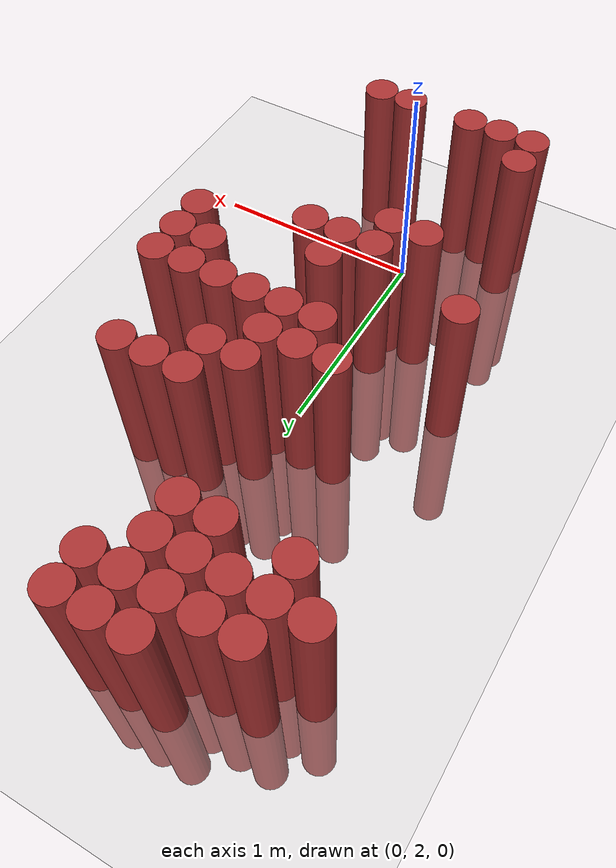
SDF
<sdf version="1.6">
 <world name="default">
  <model name="ground_plane">
   <static>1</static>
   <link name="link">
    <collision name="collision">
     <geometry><plane><normal>0 0 1</normal><size>100 100</size></plane></geometry>
     <surface><friction><ode><mu>100</mu><mu2>50</mu2></ode></friction></surface>
    </collision>
    <visual name="visual">
     <cast_shadows>0</cast_shadows>
     <geometry><plane><normal>0 0 1</normal><size>100 100</size></plane></geometry>
     <material>
      <script><uri>file://media/materials/scripts/gazebo.material</uri><name>Gazebo/Grey</name></script>
     </material>
    </visual>
   </link>
  </model>
  <model name="unit_cylinder_165">
   <static>1</static>
   <pose>-0.725000 4.075000 0.000000 0.000000 0.000000 0.000000</pose>
   <link name="link">
    <inertial>
     <mass>1</mass>
     <inertia><ixx>0.145833</ixx><ixy>0</ixy><ixz>0</ixz><iyy>0.145833</iyy><iyz>0</iyz><izz>0.125</izz></inertia>
    </inertial>
    <collision name="collision">
     <geometry><cylinder><radius>0.075000</radius><length>1.5</length></cylinder></geometry>
    </collision>
    <visual name="visual">
     <geometry><cylinder><radius>0.075000</radius><length>1.5</length></cylinder></geometry>
     <material>
      <ambient>0.648000 0.192000 0.192000 1</ambient>
      <diffuse>0.648000 0.192000 0.192000 1</diffuse>
     </material>
     <material>
      <script><name>Gazebo/Grey</name><uri>file://media/materials/scripts/gazebo.material</uri></script>
     </material>
    </visual>
   </link>
  </model>
  <model name="unit_cylinder_166">
   <static>1</static>
   <pose>-0.575000 2.725000 0.000000 0.000000 0.000000 0.000000</pose>
   <link name="link">
    <inertial>
     <mass>1</mass>
     <inertia><ixx>0.145833</ixx><ixy>0</ixy><ixz>0</ixz><iyy>0.145833</iyy><iyz>0</iyz><izz>0.125</izz></inertia>
    </inertial>
    <collision name="collision">
     <geometry><cylinder><radius>0.075000</radius><length>1.5</length></cylinder></geometry>
    </collision>
    <visual name="visual">
     <geometry><cylinder><radius>0.075000</radius><length>1.5</length></cylinder></geometry>
     <material>
      <ambient>0.648000 0.192000 0.192000 1</ambient>
      <diffuse>0.648000 0.192000 0.192000 1</diffuse>
     </material>
     <material>
      <script><name>Gazebo/Grey</name><uri>file://media/materials/scripts/gazebo.material</uri></script>
     </material>
    </visual>
   </link>
  </model>
  <model name="unit_cylinder_167">
   <static>1</static>
   <pose>-0.575000 3.925000 0.000000 0.000000 0.000000 0.000000</pose>
   <link name="link">
    <inertial>
     <mass>1</mass>
     <inertia><ixx>0.145833</ixx><ixy>0</ixy><ixz>0</ixz><iyy>0.145833</iyy><iyz>0</iyz><izz>0.125</izz></inertia>
    </inertial>
    <collision name="collision">
     <geometry><cylinder><radius>0.075000</radius><length>1.5</length></cylinder></geometry>
    </collision>
    <visual name="visual">
     <geometry><cylinder><radius>0.075000</radius><length>1.5</length></cylinder></geometry>
     <material>
      <ambient>0.648000 0.192000 0.192000 1</ambient>
      <diffuse>0.648000 0.192000 0.192000 1</diffuse>
     </material>
     <material>
      <script><name>Gazebo/Grey</name><uri>file://media/materials/scripts/gazebo.material</uri></script>
     </material>
    </visual>
   </link>
  </model>
  <model name="unit_cylinder_168">
   <static>1</static>
   <pose>-0.575000 4.075000 0.000000 0.000000 0.000000 0.000000</pose>
   <link name="link">
    <inertial>
     <mass>1</mass>
     <inertia><ixx>0.145833</ixx><ixy>0</ixy><ixz>0</ixz><iyy>0.145833</iyy><iyz>0</iyz><izz>0.125</izz></inertia>
    </inertial>
    <collision name="collision">
     <geometry><cylinder><radius>0.075000</radius><length>1.5</length></cylinder></geometry>
    </collision>
    <visual name="visual">
     <geometry><cylinder><radius>0.075000</radius><length>1.5</length></cylinder></geometry>
     <material>
      <ambient>0.648000 0.192000 0.192000 1</ambient>
      <diffuse>0.648000 0.192000 0.192000 1</diffuse>
     </material>
     <material>
      <script><name>Gazebo/Grey</name><uri>file://media/materials/scripts/gazebo.material</uri></script>
     </material>
    </visual>
   </link>
  </model>
  <model name="unit_cylinder_169">
   <static>1</static>
   <pose>-0.575000 4.225000 0.000000 0.000000 0.000000 0.000000</pose>
   <link name="link">
    <inertial>
     <mass>1</mass>
     <inertia><ixx>0.145833</ixx><ixy>0</ixy><ixz>0</ixz><iyy>0.145833</iyy><iyz>0</iyz><izz>0.125</izz></inertia>
    </inertial>
    <collision name="collision">
     <geometry><cylinder><radius>0.075000</radius><length>1.5</length></cylinder></geometry>
    </collision>
    <visual name="visual">
     <geometry><cylinder><radius>0.075000</radius><length>1.5</length></cylinder></geometry>
     <material>
      <ambient>0.648000 0.192000 0.192000 1</ambient>
      <diffuse>0.648000 0.192000 0.192000 1</diffuse>
     </material>
     <material>
      <script><name>Gazebo/Grey</name><uri>file://media/materials/scripts/gazebo.material</uri></script>
     </material>
    </visual>
   </link>
  </model>
  <model name="unit_cylinder_170">
   <static>1</static>
   <pose>-0.425000 1.675000 0.000000 0.000000 0.000000 0.000000</pose>
   <link name="link">
    <inertial>
     <mass>1</mass>
     <inertia><ixx>0.145833</ixx><ixy>0</ixy><ixz>0</ixz><iyy>0.145833</iyy><iyz>0</iyz><izz>0.125</izz></inertia>
    </inertial>
    <collision name="collision">
     <geometry><cylinder><radius>0.075000</radius><length>1.5</length></cylinder></geometry>
    </collision>
    <visual name="visual">
     <geometry><cylinder><radius>0.075000</radius><length>1.5</length></cylinder></geometry>
     <material>
      <ambient>0.648000 0.192000 0.192000 1</ambient>
      <diffuse>0.648000 0.192000 0.192000 1</diffuse>
     </material>
     <material>
      <script><name>Gazebo/Grey</name><uri>file://media/materials/scripts/gazebo.material</uri></script>
     </material>
    </visual>
   </link>
  </model>
  <model name="unit_cylinder_171">
   <static>1</static>
   <pose>-0.425000 1.825000 0.000000 0.000000 0.000000 0.000000</pose>
   <link name="link">
    <inertial>
     <mass>1</mass>
     <inertia><ixx>0.145833</ixx><ixy>0</ixy><ixz>0</ixz><iyy>0.145833</iyy><iyz>0</iyz><izz>0.125</izz></inertia>
    </inertial>
    <collision name="collision">
     <geometry><cylinder><radius>0.075000</radius><length>1.5</length></cylinder></geometry>
    </collision>
    <visual name="visual">
     <geometry><cylinder><radius>0.075000</radius><length>1.5</length></cylinder></geometry>
     <material>
      <ambient>0.648000 0.192000 0.192000 1</ambient>
      <diffuse>0.648000 0.192000 0.192000 1</diffuse>
     </material>
     <material>
      <script><name>Gazebo/Grey</name><uri>file://media/materials/scripts/gazebo.material</uri></script>
     </material>
    </visual>
   </link>
  </model>
  <model name="unit_cylinder_172">
   <static>1</static>
   <pose>-0.425000 4.075000 0.000000 0.000000 0.000000 0.000000</pose>
   <link name="link">
    <inertial>
     <mass>1</mass>
     <inertia><ixx>0.145833</ixx><ixy>0</ixy><ixz>0</ixz><iyy>0.145833</iyy><iyz>0</iyz><izz>0.125</izz></inertia>
    </inertial>
    <collision name="collision">
     <geometry><cylinder><radius>0.075000</radius><length>1.5</length></cylinder></geometry>
    </collision>
    <visual name="visual">
     <geometry><cylinder><radius>0.075000</radius><length>1.5</length></cylinder></geometry>
     <material>
      <ambient>0.648000 0.192000 0.192000 1</ambient>
      <diffuse>0.648000 0.192000 0.192000 1</diffuse>
     </material>
     <material>
      <script><name>Gazebo/Grey</name><uri>file://media/materials/scripts/gazebo.material</uri></script>
     </material>
    </visual>
   </link>
  </model>
  <model name="unit_cylinder_173">
   <static>1</static>
   <pose>-0.425000 4.225000 0.000000 0.000000 0.000000 0.000000</pose>
   <link name="link">
    <inertial>
     <mass>1</mass>
     <inertia><ixx>0.145833</ixx><ixy>0</ixy><ixz>0</ixz><iyy>0.145833</iyy><iyz>0</iyz><izz>0.125</izz></inertia>
    </inertial>
    <collision name="collision">
     <geometry><cylinder><radius>0.075000</radius><length>1.5</length></cylinder></geometry>
    </collision>
    <visual name="visual">
     <geometry><cylinder><radius>0.075000</radius><length>1.5</length></cylinder></geometry>
     <material>
      <ambient>0.648000 0.192000 0.192000 1</ambient>
      <diffuse>0.648000 0.192000 0.192000 1</diffuse>
     </material>
     <material>
      <script><name>Gazebo/Grey</name><uri>file://media/materials/scripts/gazebo.material</uri></script>
     </material>
    </visual>
   </link>
  </model>
  <model name="unit_cylinder_174">
   <static>1</static>
   <pose>-0.275000 1.675000 0.000000 0.000000 0.000000 0.000000</pose>
   <link name="link">
    <inertial>
     <mass>1</mass>
     <inertia><ixx>0.145833</ixx><ixy>0</ixy><ixz>0</ixz><iyy>0.145833</iyy><iyz>0</iyz><izz>0.125</izz></inertia>
    </inertial>
    <collision name="collision">
     <geometry><cylinder><radius>0.075000</radius><length>1.5</length></cylinder></geometry>
    </collision>
    <visual name="visual">
     <geometry><cylinder><radius>0.075000</radius><length>1.5</length></cylinder></geometry>
     <material>
      <ambient>0.648000 0.192000 0.192000 1</ambient>
      <diffuse>0.648000 0.192000 0.192000 1</diffuse>
     </material>
     <material>
      <script><name>Gazebo/Grey</name><uri>file://media/materials/scripts/gazebo.material</uri></script>
     </material>
    </visual>
   </link>
  </model>
  <model name="unit_cylinder_175">
   <static>1</static>
   <pose>-0.275000 2.425000 0.000000 0.000000 0.000000 0.000000</pose>
   <link name="link">
    <inertial>
     <mass>1</mass>
     <inertia><ixx>0.145833</ixx><ixy>0</ixy><ixz>0</ixz><iyy>0.145833</iyy><iyz>0</iyz><izz>0.125</izz></inertia>
    </inertial>
    <collision name="collision">
     <geometry><cylinder><radius>0.075000</radius><length>1.5</length></cylinder></geometry>
    </collision>
    <visual name="visual">
     <geometry><cylinder><radius>0.075000</radius><length>1.5</length></cylinder></geometry>
     <material>
      <ambient>0.648000 0.192000 0.192000 1</ambient>
      <diffuse>0.648000 0.192000 0.192000 1</diffuse>
     </material>
     <material>
      <script><name>Gazebo/Grey</name><uri>file://media/materials/scripts/gazebo.material</uri></script>
     </material>
    </visual>
   </link>
  </model>
  <model name="unit_cylinder_176">
   <static>1</static>
   <pose>-0.275000 3.175000 0.000000 0.000000 0.000000 0.000000</pose>
   <link name="link">
    <inertial>
     <mass>1</mass>
     <inertia><ixx>0.145833</ixx><ixy>0</ixy><ixz>0</ixz><iyy>0.145833</iyy><iyz>0</iyz><izz>0.125</izz></inertia>
    </inertial>
    <collision name="collision">
     <geometry><cylinder><radius>0.075000</radius><length>1.5</length></cylinder></geometry>
    </collision>
    <visual name="visual">
     <geometry><cylinder><radius>0.075000</radius><length>1.5</length></cylinder></geometry>
     <material>
      <ambient>0.648000 0.192000 0.192000 1</ambient>
      <diffuse>0.648000 0.192000 0.192000 1</diffuse>
     </material>
     <material>
      <script><name>Gazebo/Grey</name><uri>file://media/materials/scripts/gazebo.material</uri></script>
     </material>
    </visual>
   </link>
  </model>
  <model name="unit_cylinder_177">
   <static>1</static>
   <pose>-0.275000 3.925000 0.000000 0.000000 0.000000 0.000000</pose>
   <link name="link">
    <inertial>
     <mass>1</mass>
     <inertia><ixx>0.145833</ixx><ixy>0</ixy><ixz>0</ixz><iyy>0.145833</iyy><iyz>0</iyz><izz>0.125</izz></inertia>
    </inertial>
    <collision name="collision">
     <geometry><cylinder><radius>0.075000</radius><length>1.5</length></cylinder></geometry>
    </collision>
    <visual name="visual">
     <geometry><cylinder><radius>0.075000</radius><length>1.5</length></cylinder></geometry>
     <material>
      <ambient>0.648000 0.192000 0.192000 1</ambient>
      <diffuse>0.648000 0.192000 0.192000 1</diffuse>
     </material>
     <material>
      <script><name>Gazebo/Grey</name><uri>file://media/materials/scripts/gazebo.material</uri></script>
     </material>
    </visual>
   </link>
  </model>
  <model name="unit_cylinder_178">
   <static>1</static>
   <pose>-0.275000 4.075000 0.000000 0.000000 0.000000 0.000000</pose>
   <link name="link">
    <inertial>
     <mass>1</mass>
     <inertia><ixx>0.145833</ixx><ixy>0</ixy><ixz>0</ixz><iyy>0.145833</iyy><iyz>0</iyz><izz>0.125</izz></inertia>
    </inertial>
    <collision name="collision">
     <geometry><cylinder><radius>0.075000</radius><length>1.5</length></cylinder></geometry>
    </collision>
    <visual name="visual">
     <geometry><cylinder><radius>0.075000</radius><length>1.5</length></cylinder></geometry>
     <material>
      <ambient>0.648000 0.192000 0.192000 1</ambient>
      <diffuse>0.648000 0.192000 0.192000 1</diffuse>
     </material>
     <material>
      <script><name>Gazebo/Grey</name><uri>file://media/materials/scripts/gazebo.material</uri></script>
     </material>
    </visual>
   </link>
  </model>
  <model name="unit_cylinder_179">
   <static>1</static>
   <pose>-0.275000 4.225000 0.000000 0.000000 0.000000 0.000000</pose>
   <link name="link">
    <inertial>
     <mass>1</mass>
     <inertia><ixx>0.145833</ixx><ixy>0</ixy><ixz>0</ixz><iyy>0.145833</iyy><iyz>0</iyz><izz>0.125</izz></inertia>
    </inertial>
    <collision name="collision">
     <geometry><cylinder><radius>0.075000</radius><length>1.5</length></cylinder></geometry>
    </collision>
    <visual name="visual">
     <geometry><cylinder><radius>0.075000</radius><length>1.5</length></cylinder></geometry>
     <material>
      <ambient>0.648000 0.192000 0.192000 1</ambient>
      <diffuse>0.648000 0.192000 0.192000 1</diffuse>
     </material>
     <material>
      <script><name>Gazebo/Grey</name><uri>file://media/materials/scripts/gazebo.material</uri></script>
     </material>
    </visual>
   </link>
  </model>
  <model name="unit_cylinder_180">
   <static>1</static>
   <pose>-0.275000 4.375000 0.000000 0.000000 0.000000 0.000000</pose>
   <link name="link">
    <inertial>
     <mass>1</mass>
     <inertia><ixx>0.145833</ixx><ixy>0</ixy><ixz>0</ixz><iyy>0.145833</iyy><iyz>0</iyz><izz>0.125</izz></inertia>
    </inertial>
    <collision name="collision">
     <geometry><cylinder><radius>0.075000</radius><length>1.5</length></cylinder></geometry>
    </collision>
    <visual name="visual">
     <geometry><cylinder><radius>0.075000</radius><length>1.5</length></cylinder></geometry>
     <material>
      <ambient>0.648000 0.192000 0.192000 1</ambient>
      <diffuse>0.648000 0.192000 0.192000 1</diffuse>
     </material>
     <material>
      <script><name>Gazebo/Grey</name><uri>file://media/materials/scripts/gazebo.material</uri></script>
     </material>
    </visual>
   </link>
  </model>
  <model name="unit_cylinder_182">
   <static>1</static>
   <pose>-0.125000 1.675000 0.000000 0.000000 0.000000 0.000000</pose>
   <link name="link">
    <inertial>
     <mass>1</mass>
     <inertia><ixx>0.145833</ixx><ixy>0</ixy><ixz>0</ixz><iyy>0.145833</iyy><iyz>0</iyz><izz>0.125</izz></inertia>
    </inertial>
    <collision name="collision">
     <geometry><cylinder><radius>0.075000</radius><length>1.5</length></cylinder></geometry>
    </collision>
    <visual name="visual">
     <geometry><cylinder><radius>0.075000</radius><length>1.5</length></cylinder></geometry>
     <material>
      <ambient>0.648000 0.192000 0.192000 1</ambient>
      <diffuse>0.648000 0.192000 0.192000 1</diffuse>
     </material>
     <material>
      <script><name>Gazebo/Grey</name><uri>file://media/materials/scripts/gazebo.material</uri></script>
     </material>
    </visual>
   </link>
  </model>
  <model name="unit_cylinder_183">
   <static>1</static>
   <pose>-0.125000 2.425000 0.000000 0.000000 0.000000 0.000000</pose>
   <link name="link">
    <inertial>
     <mass>1</mass>
     <inertia><ixx>0.145833</ixx><ixy>0</ixy><ixz>0</ixz><iyy>0.145833</iyy><iyz>0</iyz><izz>0.125</izz></inertia>
    </inertial>
    <collision name="collision">
     <geometry><cylinder><radius>0.075000</radius><length>1.5</length></cylinder></geometry>
    </collision>
    <visual name="visual">
     <geometry><cylinder><radius>0.075000</radius><length>1.5</length></cylinder></geometry>
     <material>
      <ambient>0.648000 0.192000 0.192000 1</ambient>
      <diffuse>0.648000 0.192000 0.192000 1</diffuse>
     </material>
     <material>
      <script><name>Gazebo/Grey</name><uri>file://media/materials/scripts/gazebo.material</uri></script>
     </material>
    </visual>
   </link>
  </model>
  <model name="unit_cylinder_184">
   <static>1</static>
   <pose>-0.125000 2.575000 0.000000 0.000000 0.000000 0.000000</pose>
   <link name="link">
    <inertial>
     <mass>1</mass>
     <inertia><ixx>0.145833</ixx><ixy>0</ixy><ixz>0</ixz><iyy>0.145833</iyy><iyz>0</iyz><izz>0.125</izz></inertia>
    </inertial>
    <collision name="collision">
     <geometry><cylinder><radius>0.075000</radius><length>1.5</length></cylinder></geometry>
    </collision>
    <visual name="visual">
     <geometry><cylinder><radius>0.075000</radius><length>1.5</length></cylinder></geometry>
     <material>
      <ambient>0.648000 0.192000 0.192000 1</ambient>
      <diffuse>0.648000 0.192000 0.192000 1</diffuse>
     </material>
     <material>
      <script><name>Gazebo/Grey</name><uri>file://media/materials/scripts/gazebo.material</uri></script>
     </material>
    </visual>
   </link>
  </model>
  <model name="unit_cylinder_185">
   <static>1</static>
   <pose>-0.125000 3.025000 0.000000 0.000000 0.000000 0.000000</pose>
   <link name="link">
    <inertial>
     <mass>1</mass>
     <inertia><ixx>0.145833</ixx><ixy>0</ixy><ixz>0</ixz><iyy>0.145833</iyy><iyz>0</iyz><izz>0.125</izz></inertia>
    </inertial>
    <collision name="collision">
     <geometry><cylinder><radius>0.075000</radius><length>1.5</length></cylinder></geometry>
    </collision>
    <visual name="visual">
     <geometry><cylinder><radius>0.075000</radius><length>1.5</length></cylinder></geometry>
     <material>
      <ambient>0.648000 0.192000 0.192000 1</ambient>
      <diffuse>0.648000 0.192000 0.192000 1</diffuse>
     </material>
     <material>
      <script><name>Gazebo/Grey</name><uri>file://media/materials/scripts/gazebo.material</uri></script>
     </material>
    </visual>
   </link>
  </model>
  <model name="unit_cylinder_186">
   <static>1</static>
   <pose>-0.125000 3.175000 0.000000 0.000000 0.000000 0.000000</pose>
   <link name="link">
    <inertial>
     <mass>1</mass>
     <inertia><ixx>0.145833</ixx><ixy>0</ixy><ixz>0</ixz><iyy>0.145833</iyy><iyz>0</iyz><izz>0.125</izz></inertia>
    </inertial>
    <collision name="collision">
     <geometry><cylinder><radius>0.075000</radius><length>1.5</length></cylinder></geometry>
    </collision>
    <visual name="visual">
     <geometry><cylinder><radius>0.075000</radius><length>1.5</length></cylinder></geometry>
     <material>
      <ambient>0.648000 0.192000 0.192000 1</ambient>
      <diffuse>0.648000 0.192000 0.192000 1</diffuse>
     </material>
     <material>
      <script><name>Gazebo/Grey</name><uri>file://media/materials/scripts/gazebo.material</uri></script>
     </material>
    </visual>
   </link>
  </model>
  <model name="unit_cylinder_187">
   <static>1</static>
   <pose>-0.125000 3.925000 0.000000 0.000000 0.000000 0.000000</pose>
   <link name="link">
    <inertial>
     <mass>1</mass>
     <inertia><ixx>0.145833</ixx><ixy>0</ixy><ixz>0</ixz><iyy>0.145833</iyy><iyz>0</iyz><izz>0.125</izz></inertia>
    </inertial>
    <collision name="collision">
     <geometry><cylinder><radius>0.075000</radius><length>1.5</length></cylinder></geometry>
    </collision>
    <visual name="visual">
     <geometry><cylinder><radius>0.075000</radius><length>1.5</length></cylinder></geometry>
     <material>
      <ambient>0.648000 0.192000 0.192000 1</ambient>
      <diffuse>0.648000 0.192000 0.192000 1</diffuse>
     </material>
     <material>
      <script><name>Gazebo/Grey</name><uri>file://media/materials/scripts/gazebo.material</uri></script>
     </material>
    </visual>
   </link>
  </model>
  <model name="unit_cylinder_188">
   <static>1</static>
   <pose>-0.125000 4.075000 0.000000 0.000000 0.000000 0.000000</pose>
   <link name="link">
    <inertial>
     <mass>1</mass>
     <inertia><ixx>0.145833</ixx><ixy>0</ixy><ixz>0</ixz><iyy>0.145833</iyy><iyz>0</iyz><izz>0.125</izz></inertia>
    </inertial>
    <collision name="collision">
     <geometry><cylinder><radius>0.075000</radius><length>1.5</length></cylinder></geometry>
    </collision>
    <visual name="visual">
     <geometry><cylinder><radius>0.075000</radius><length>1.5</length></cylinder></geometry>
     <material>
      <ambient>0.648000 0.192000 0.192000 1</ambient>
      <diffuse>0.648000 0.192000 0.192000 1</diffuse>
     </material>
     <material>
      <script><name>Gazebo/Grey</name><uri>file://media/materials/scripts/gazebo.material</uri></script>
     </material>
    </visual>
   </link>
  </model>
  <model name="unit_cylinder_189">
   <static>1</static>
   <pose>-0.125000 4.225000 0.000000 0.000000 0.000000 0.000000</pose>
   <link name="link">
    <inertial>
     <mass>1</mass>
     <inertia><ixx>0.145833</ixx><ixy>0</ixy><ixz>0</ixz><iyy>0.145833</iyy><iyz>0</iyz><izz>0.125</izz></inertia>
    </inertial>
    <collision name="collision">
     <geometry><cylinder><radius>0.075000</radius><length>1.5</length></cylinder></geometry>
    </collision>
    <visual name="visual">
     <geometry><cylinder><radius>0.075000</radius><length>1.5</length></cylinder></geometry>
     <material>
      <ambient>0.648000 0.192000 0.192000 1</ambient>
      <diffuse>0.648000 0.192000 0.192000 1</diffuse>
     </material>
     <material>
      <script><name>Gazebo/Grey</name><uri>file://media/materials/scripts/gazebo.material</uri></script>
     </material>
    </visual>
   </link>
  </model>
  <model name="unit_cylinder_190">
   <static>1</static>
   <pose>-0.125000 4.375000 0.000000 0.000000 0.000000 0.000000</pose>
   <link name="link">
    <inertial>
     <mass>1</mass>
     <inertia><ixx>0.145833</ixx><ixy>0</ixy><ixz>0</ixz><iyy>0.145833</iyy><iyz>0</iyz><izz>0.125</izz></inertia>
    </inertial>
    <collision name="collision">
     <geometry><cylinder><radius>0.075000</radius><length>1.5</length></cylinder></geometry>
    </collision>
    <visual name="visual">
     <geometry><cylinder><radius>0.075000</radius><length>1.5</length></cylinder></geometry>
     <material>
      <ambient>0.648000 0.192000 0.192000 1</ambient>
      <diffuse>0.648000 0.192000 0.192000 1</diffuse>
     </material>
     <material>
      <script><name>Gazebo/Grey</name><uri>file://media/materials/scripts/gazebo.material</uri></script>
     </material>
    </visual>
   </link>
  </model>
  <model name="unit_cylinder_191">
   <static>1</static>
   <pose>0.025000 2.575000 0.000000 0.000000 0.000000 0.000000</pose>
   <link name="link">
    <inertial>
     <mass>1</mass>
     <inertia><ixx>0.145833</ixx><ixy>0</ixy><ixz>0</ixz><iyy>0.145833</iyy><iyz>0</iyz><izz>0.125</izz></inertia>
    </inertial>
    <collision name="collision">
     <geometry><cylinder><radius>0.075000</radius><length>1.5</length></cylinder></geometry>
    </collision>
    <visual name="visual">
     <geometry><cylinder><radius>0.075000</radius><length>1.5</length></cylinder></geometry>
     <material>
      <ambient>0.648000 0.192000 0.192000 1</ambient>
      <diffuse>0.648000 0.192000 0.192000 1</diffuse>
     </material>
     <material>
      <script><name>Gazebo/Grey</name><uri>file://media/materials/scripts/gazebo.material</uri></script>
     </material>
    </visual>
   </link>
  </model>
  <model name="unit_cylinder_192">
   <static>1</static>
   <pose>0.025000 2.725000 0.000000 0.000000 0.000000 0.000000</pose>
   <link name="link">
    <inertial>
     <mass>1</mass>
     <inertia><ixx>0.145833</ixx><ixy>0</ixy><ixz>0</ixz><iyy>0.145833</iyy><iyz>0</iyz><izz>0.125</izz></inertia>
    </inertial>
    <collision name="collision">
     <geometry><cylinder><radius>0.075000</radius><length>1.5</length></cylinder></geometry>
    </collision>
    <visual name="visual">
     <geometry><cylinder><radius>0.075000</radius><length>1.5</length></cylinder></geometry>
     <material>
      <ambient>0.648000 0.192000 0.192000 1</ambient>
      <diffuse>0.648000 0.192000 0.192000 1</diffuse>
     </material>
     <material>
      <script><name>Gazebo/Grey</name><uri>file://media/materials/scripts/gazebo.material</uri></script>
     </material>
    </visual>
   </link>
  </model>
  <model name="unit_cylinder_193">
   <static>1</static>
   <pose>0.025000 3.025000 0.000000 0.000000 0.000000 0.000000</pose>
   <link name="link">
    <inertial>
     <mass>1</mass>
     <inertia><ixx>0.145833</ixx><ixy>0</ixy><ixz>0</ixz><iyy>0.145833</iyy><iyz>0</iyz><izz>0.125</izz></inertia>
    </inertial>
    <collision name="collision">
     <geometry><cylinder><radius>0.075000</radius><length>1.5</length></cylinder></geometry>
    </collision>
    <visual name="visual">
     <geometry><cylinder><radius>0.075000</radius><length>1.5</length></cylinder></geometry>
     <material>
      <ambient>0.648000 0.192000 0.192000 1</ambient>
      <diffuse>0.648000 0.192000 0.192000 1</diffuse>
     </material>
     <material>
      <script><name>Gazebo/Grey</name><uri>file://media/materials/scripts/gazebo.material</uri></script>
     </material>
    </visual>
   </link>
  </model>
  <model name="unit_cylinder_194">
   <static>1</static>
   <pose>0.025000 3.175000 0.000000 0.000000 0.000000 0.000000</pose>
   <link name="link">
    <inertial>
     <mass>1</mass>
     <inertia><ixx>0.145833</ixx><ixy>0</ixy><ixz>0</ixz><iyy>0.145833</iyy><iyz>0</iyz><izz>0.125</izz></inertia>
    </inertial>
    <collision name="collision">
     <geometry><cylinder><radius>0.075000</radius><length>1.5</length></cylinder></geometry>
    </collision>
    <visual name="visual">
     <geometry><cylinder><radius>0.075000</radius><length>1.5</length></cylinder></geometry>
     <material>
      <ambient>0.648000 0.192000 0.192000 1</ambient>
      <diffuse>0.648000 0.192000 0.192000 1</diffuse>
     </material>
     <material>
      <script><name>Gazebo/Grey</name><uri>file://media/materials/scripts/gazebo.material</uri></script>
     </material>
    </visual>
   </link>
  </model>
  <model name="unit_cylinder_195">
   <static>1</static>
   <pose>0.025000 3.325000 0.000000 0.000000 0.000000 0.000000</pose>
   <link name="link">
    <inertial>
     <mass>1</mass>
     <inertia><ixx>0.145833</ixx><ixy>0</ixy><ixz>0</ixz><iyy>0.145833</iyy><iyz>0</iyz><izz>0.125</izz></inertia>
    </inertial>
    <collision name="collision">
     <geometry><cylinder><radius>0.075000</radius><length>1.5</length></cylinder></geometry>
    </collision>
    <visual name="visual">
     <geometry><cylinder><radius>0.075000</radius><length>1.5</length></cylinder></geometry>
     <material>
      <ambient>0.648000 0.192000 0.192000 1</ambient>
      <diffuse>0.648000 0.192000 0.192000 1</diffuse>
     </material>
     <material>
      <script><name>Gazebo/Grey</name><uri>file://media/materials/scripts/gazebo.material</uri></script>
     </material>
    </visual>
   </link>
  </model>
  <model name="unit_cylinder_196">
   <static>1</static>
   <pose>0.025000 4.225000 0.000000 0.000000 0.000000 0.000000</pose>
   <link name="link">
    <inertial>
     <mass>1</mass>
     <inertia><ixx>0.145833</ixx><ixy>0</ixy><ixz>0</ixz><iyy>0.145833</iyy><iyz>0</iyz><izz>0.125</izz></inertia>
    </inertial>
    <collision name="collision">
     <geometry><cylinder><radius>0.075000</radius><length>1.5</length></cylinder></geometry>
    </collision>
    <visual name="visual">
     <geometry><cylinder><radius>0.075000</radius><length>1.5</length></cylinder></geometry>
     <material>
      <ambient>0.648000 0.192000 0.192000 1</ambient>
      <diffuse>0.648000 0.192000 0.192000 1</diffuse>
     </material>
     <material>
      <script><name>Gazebo/Grey</name><uri>file://media/materials/scripts/gazebo.material</uri></script>
     </material>
    </visual>
   </link>
  </model>
  <model name="unit_cylinder_197">
   <static>1</static>
   <pose>0.025000 4.375000 0.000000 0.000000 0.000000 0.000000</pose>
   <link name="link">
    <inertial>
     <mass>1</mass>
     <inertia><ixx>0.145833</ixx><ixy>0</ixy><ixz>0</ixz><iyy>0.145833</iyy><iyz>0</iyz><izz>0.125</izz></inertia>
    </inertial>
    <collision name="collision">
     <geometry><cylinder><radius>0.075000</radius><length>1.5</length></cylinder></geometry>
    </collision>
    <visual name="visual">
     <geometry><cylinder><radius>0.075000</radius><length>1.5</length></cylinder></geometry>
     <material>
      <ambient>0.648000 0.192000 0.192000 1</ambient>
      <diffuse>0.648000 0.192000 0.192000 1</diffuse>
     </material>
     <material>
      <script><name>Gazebo/Grey</name><uri>file://media/materials/scripts/gazebo.material</uri></script>
     </material>
    </visual>
   </link>
  </model>
  <model name="unit_cylinder_199">
   <static>1</static>
   <pose>0.175000 1.675000 0.000000 0.000000 0.000000 0.000000</pose>
   <link name="link">
    <inertial>
     <mass>1</mass>
     <inertia><ixx>0.145833</ixx><ixy>0</ixy><ixz>0</ixz><iyy>0.145833</iyy><iyz>0</iyz><izz>0.125</izz></inertia>
    </inertial>
    <collision name="collision">
     <geometry><cylinder><radius>0.075000</radius><length>1.5</length></cylinder></geometry>
    </collision>
    <visual name="visual">
     <geometry><cylinder><radius>0.075000</radius><length>1.5</length></cylinder></geometry>
     <material>
      <ambient>0.648000 0.192000 0.192000 1</ambient>
      <diffuse>0.648000 0.192000 0.192000 1</diffuse>
     </material>
     <material>
      <script><name>Gazebo/Grey</name><uri>file://media/materials/scripts/gazebo.material</uri></script>
     </material>
    </visual>
   </link>
  </model>
  <model name="unit_cylinder_200">
   <static>1</static>
   <pose>0.175000 2.575000 0.000000 0.000000 0.000000 0.000000</pose>
   <link name="link">
    <inertial>
     <mass>1</mass>
     <inertia><ixx>0.145833</ixx><ixy>0</ixy><ixz>0</ixz><iyy>0.145833</iyy><iyz>0</iyz><izz>0.125</izz></inertia>
    </inertial>
    <collision name="collision">
     <geometry><cylinder><radius>0.075000</radius><length>1.5</length></cylinder></geometry>
    </collision>
    <visual name="visual">
     <geometry><cylinder><radius>0.075000</radius><length>1.5</length></cylinder></geometry>
     <material>
      <ambient>0.648000 0.192000 0.192000 1</ambient>
      <diffuse>0.648000 0.192000 0.192000 1</diffuse>
     </material>
     <material>
      <script><name>Gazebo/Grey</name><uri>file://media/materials/scripts/gazebo.material</uri></script>
     </material>
    </visual>
   </link>
  </model>
  <model name="unit_cylinder_201">
   <static>1</static>
   <pose>0.175000 3.025000 0.000000 0.000000 0.000000 0.000000</pose>
   <link name="link">
    <inertial>
     <mass>1</mass>
     <inertia><ixx>0.145833</ixx><ixy>0</ixy><ixz>0</ixz><iyy>0.145833</iyy><iyz>0</iyz><izz>0.125</izz></inertia>
    </inertial>
    <collision name="collision">
     <geometry><cylinder><radius>0.075000</radius><length>1.5</length></cylinder></geometry>
    </collision>
    <visual name="visual">
     <geometry><cylinder><radius>0.075000</radius><length>1.5</length></cylinder></geometry>
     <material>
      <ambient>0.648000 0.192000 0.192000 1</ambient>
      <diffuse>0.648000 0.192000 0.192000 1</diffuse>
     </material>
     <material>
      <script><name>Gazebo/Grey</name><uri>file://media/materials/scripts/gazebo.material</uri></script>
     </material>
    </visual>
   </link>
  </model>
  <model name="unit_cylinder_202">
   <static>1</static>
   <pose>0.175000 3.325000 0.000000 0.000000 0.000000 0.000000</pose>
   <link name="link">
    <inertial>
     <mass>1</mass>
     <inertia><ixx>0.145833</ixx><ixy>0</ixy><ixz>0</ixz><iyy>0.145833</iyy><iyz>0</iyz><izz>0.125</izz></inertia>
    </inertial>
    <collision name="collision">
     <geometry><cylinder><radius>0.075000</radius><length>1.5</length></cylinder></geometry>
    </collision>
    <visual name="visual">
     <geometry><cylinder><radius>0.075000</radius><length>1.5</length></cylinder></geometry>
     <material>
      <ambient>0.648000 0.192000 0.192000 1</ambient>
      <diffuse>0.648000 0.192000 0.192000 1</diffuse>
     </material>
     <material>
      <script><name>Gazebo/Grey</name><uri>file://media/materials/scripts/gazebo.material</uri></script>
     </material>
    </visual>
   </link>
  </model>
  <model name="unit_cylinder_203">
   <static>1</static>
   <pose>0.175000 3.475000 0.000000 0.000000 0.000000 0.000000</pose>
   <link name="link">
    <inertial>
     <mass>1</mass>
     <inertia><ixx>0.145833</ixx><ixy>0</ixy><ixz>0</ixz><iyy>0.145833</iyy><iyz>0</iyz><izz>0.125</izz></inertia>
    </inertial>
    <collision name="collision">
     <geometry><cylinder><radius>0.075000</radius><length>1.5</length></cylinder></geometry>
    </collision>
    <visual name="visual">
     <geometry><cylinder><radius>0.075000</radius><length>1.5</length></cylinder></geometry>
     <material>
      <ambient>0.648000 0.192000 0.192000 1</ambient>
      <diffuse>0.648000 0.192000 0.192000 1</diffuse>
     </material>
     <material>
      <script><name>Gazebo/Grey</name><uri>file://media/materials/scripts/gazebo.material</uri></script>
     </material>
    </visual>
   </link>
  </model>
  <model name="unit_cylinder_204">
   <static>1</static>
   <pose>0.325000 1.675000 0.000000 0.000000 0.000000 0.000000</pose>
   <link name="link">
    <inertial>
     <mass>1</mass>
     <inertia><ixx>0.145833</ixx><ixy>0</ixy><ixz>0</ixz><iyy>0.145833</iyy><iyz>0</iyz><izz>0.125</izz></inertia>
    </inertial>
    <collision name="collision">
     <geometry><cylinder><radius>0.075000</radius><length>1.5</length></cylinder></geometry>
    </collision>
    <visual name="visual">
     <geometry><cylinder><radius>0.075000</radius><length>1.5</length></cylinder></geometry>
     <material>
      <ambient>0.648000 0.192000 0.192000 1</ambient>
      <diffuse>0.648000 0.192000 0.192000 1</diffuse>
     </material>
     <material>
      <script><name>Gazebo/Grey</name><uri>file://media/materials/scripts/gazebo.material</uri></script>
     </material>
    </visual>
   </link>
  </model>
  <model name="unit_cylinder_205">
   <static>1</static>
   <pose>0.325000 3.025000 0.000000 0.000000 0.000000 0.000000</pose>
   <link name="link">
    <inertial>
     <mass>1</mass>
     <inertia><ixx>0.145833</ixx><ixy>0</ixy><ixz>0</ixz><iyy>0.145833</iyy><iyz>0</iyz><izz>0.125</izz></inertia>
    </inertial>
    <collision name="collision">
     <geometry><cylinder><radius>0.075000</radius><length>1.5</length></cylinder></geometry>
    </collision>
    <visual name="visual">
     <geometry><cylinder><radius>0.075000</radius><length>1.5</length></cylinder></geometry>
     <material>
      <ambient>0.648000 0.192000 0.192000 1</ambient>
      <diffuse>0.648000 0.192000 0.192000 1</diffuse>
     </material>
     <material>
      <script><name>Gazebo/Grey</name><uri>file://media/materials/scripts/gazebo.material</uri></script>
     </material>
    </visual>
   </link>
  </model>
  <model name="unit_cylinder_206">
   <static>1</static>
   <pose>0.325000 3.475000 0.000000 0.000000 0.000000 0.000000</pose>
   <link name="link">
    <inertial>
     <mass>1</mass>
     <inertia><ixx>0.145833</ixx><ixy>0</ixy><ixz>0</ixz><iyy>0.145833</iyy><iyz>0</iyz><izz>0.125</izz></inertia>
    </inertial>
    <collision name="collision">
     <geometry><cylinder><radius>0.075000</radius><length>1.5</length></cylinder></geometry>
    </collision>
    <visual name="visual">
     <geometry><cylinder><radius>0.075000</radius><length>1.5</length></cylinder></geometry>
     <material>
      <ambient>0.648000 0.192000 0.192000 1</ambient>
      <diffuse>0.648000 0.192000 0.192000 1</diffuse>
     </material>
     <material>
      <script><name>Gazebo/Grey</name><uri>file://media/materials/scripts/gazebo.material</uri></script>
     </material>
    </visual>
   </link>
  </model>
  <model name="unit_cylinder_207">
   <static>1</static>
   <pose>0.475000 2.875000 0.000000 0.000000 0.000000 0.000000</pose>
   <link name="link">
    <inertial>
     <mass>1</mass>
     <inertia><ixx>0.145833</ixx><ixy>0</ixy><ixz>0</ixz><iyy>0.145833</iyy><iyz>0</iyz><izz>0.125</izz></inertia>
    </inertial>
    <collision name="collision">
     <geometry><cylinder><radius>0.075000</radius><length>1.5</length></cylinder></geometry>
    </collision>
    <visual name="visual">
     <geometry><cylinder><radius>0.075000</radius><length>1.5</length></cylinder></geometry>
     <material>
      <ambient>0.648000 0.192000 0.192000 1</ambient>
      <diffuse>0.648000 0.192000 0.192000 1</diffuse>
     </material>
     <material>
      <script><name>Gazebo/Grey</name><uri>file://media/materials/scripts/gazebo.material</uri></script>
     </material>
    </visual>
   </link>
  </model>
  <model name="unit_cylinder_208">
   <static>1</static>
   <pose>0.475000 3.025000 0.000000 0.000000 0.000000 0.000000</pose>
   <link name="link">
    <inertial>
     <mass>1</mass>
     <inertia><ixx>0.145833</ixx><ixy>0</ixy><ixz>0</ixz><iyy>0.145833</iyy><iyz>0</iyz><izz>0.125</izz></inertia>
    </inertial>
    <collision name="collision">
     <geometry><cylinder><radius>0.075000</radius><length>1.5</length></cylinder></geometry>
    </collision>
    <visual name="visual">
     <geometry><cylinder><radius>0.075000</radius><length>1.5</length></cylinder></geometry>
     <material>
      <ambient>0.648000 0.192000 0.192000 1</ambient>
      <diffuse>0.648000 0.192000 0.192000 1</diffuse>
     </material>
     <material>
      <script><name>Gazebo/Grey</name><uri>file://media/materials/scripts/gazebo.material</uri></script>
     </material>
    </visual>
   </link>
  </model>
  <model name="unit_cylinder_209">
   <static>1</static>
   <pose>0.475000 3.475000 0.000000 0.000000 0.000000 0.000000</pose>
   <link name="link">
    <inertial>
     <mass>1</mass>
     <inertia><ixx>0.145833</ixx><ixy>0</ixy><ixz>0</ixz><iyy>0.145833</iyy><iyz>0</iyz><izz>0.125</izz></inertia>
    </inertial>
    <collision name="collision">
     <geometry><cylinder><radius>0.075000</radius><length>1.5</length></cylinder></geometry>
    </collision>
    <visual name="visual">
     <geometry><cylinder><radius>0.075000</radius><length>1.5</length></cylinder></geometry>
     <material>
      <ambient>0.648000 0.192000 0.192000 1</ambient>
      <diffuse>0.648000 0.192000 0.192000 1</diffuse>
     </material>
     <material>
      <script><name>Gazebo/Grey</name><uri>file://media/materials/scripts/gazebo.material</uri></script>
     </material>
    </visual>
   </link>
  </model>
  <model name="unit_cylinder_210">
   <static>1</static>
   <pose>0.625000 2.725000 0.000000 0.000000 0.000000 0.000000</pose>
   <link name="link">
    <inertial>
     <mass>1</mass>
     <inertia><ixx>0.145833</ixx><ixy>0</ixy><ixz>0</ixz><iyy>0.145833</iyy><iyz>0</iyz><izz>0.125</izz></inertia>
    </inertial>
    <collision name="collision">
     <geometry><cylinder><radius>0.075000</radius><length>1.5</length></cylinder></geometry>
    </collision>
    <visual name="visual">
     <geometry><cylinder><radius>0.075000</radius><length>1.5</length></cylinder></geometry>
     <material>
      <ambient>0.648000 0.192000 0.192000 1</ambient>
      <diffuse>0.648000 0.192000 0.192000 1</diffuse>
     </material>
     <material>
      <script><name>Gazebo/Grey</name><uri>file://media/materials/scripts/gazebo.material</uri></script>
     </material>
    </visual>
   </link>
  </model>
  <model name="unit_cylinder_211">
   <static>1</static>
   <pose>0.625000 2.875000 0.000000 0.000000 0.000000 0.000000</pose>
   <link name="link">
    <inertial>
     <mass>1</mass>
     <inertia><ixx>0.145833</ixx><ixy>0</ixy><ixz>0</ixz><iyy>0.145833</iyy><iyz>0</iyz><izz>0.125</izz></inertia>
    </inertial>
    <collision name="collision">
     <geometry><cylinder><radius>0.075000</radius><length>1.5</length></cylinder></geometry>
    </collision>
    <visual name="visual">
     <geometry><cylinder><radius>0.075000</radius><length>1.5</length></cylinder></geometry>
     <material>
      <ambient>0.648000 0.192000 0.192000 1</ambient>
      <diffuse>0.648000 0.192000 0.192000 1</diffuse>
     </material>
     <material>
      <script><name>Gazebo/Grey</name><uri>file://media/materials/scripts/gazebo.material</uri></script>
     </material>
    </visual>
   </link>
  </model>
  <model name="unit_cylinder_212">
   <static>1</static>
   <pose>0.625000 3.025000 0.000000 0.000000 0.000000 0.000000</pose>
   <link name="link">
    <inertial>
     <mass>1</mass>
     <inertia><ixx>0.145833</ixx><ixy>0</ixy><ixz>0</ixz><iyy>0.145833</iyy><iyz>0</iyz><izz>0.125</izz></inertia>
    </inertial>
    <collision name="collision">
     <geometry><cylinder><radius>0.075000</radius><length>1.5</length></cylinder></geometry>
    </collision>
    <visual name="visual">
     <geometry><cylinder><radius>0.075000</radius><length>1.5</length></cylinder></geometry>
     <material>
      <ambient>0.648000 0.192000 0.192000 1</ambient>
      <diffuse>0.648000 0.192000 0.192000 1</diffuse>
     </material>
     <material>
      <script><name>Gazebo/Grey</name><uri>file://media/materials/scripts/gazebo.material</uri></script>
     </material>
    </visual>
   </link>
  </model>
 </world>
</sdf>
